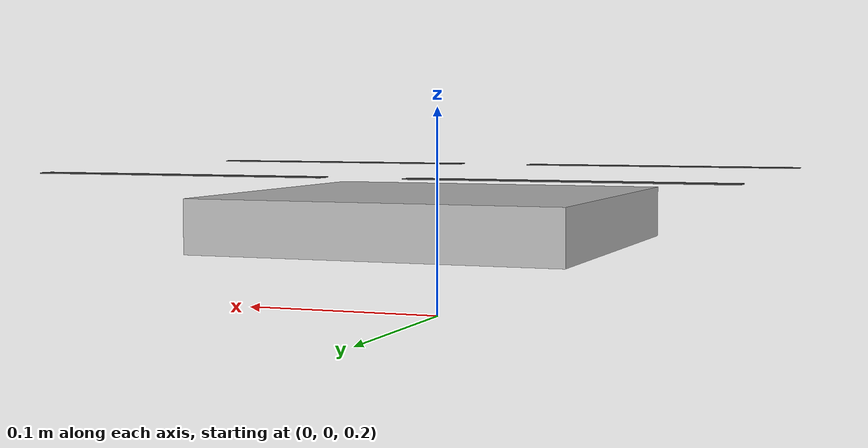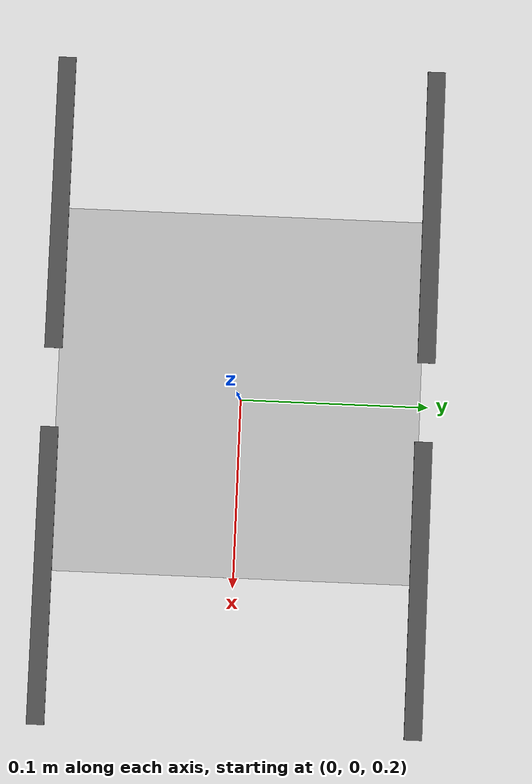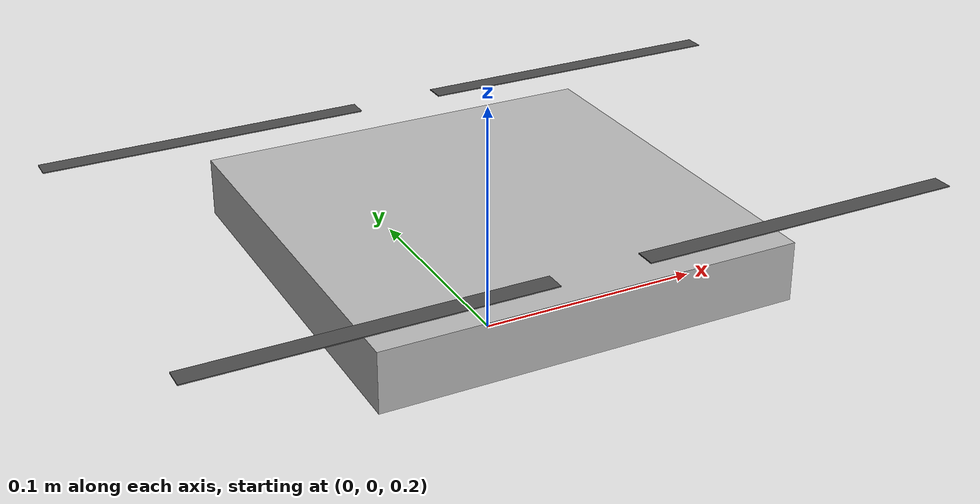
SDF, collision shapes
<?xml version="1.0" encoding="UTF-8"?>
<sdf version='1.9'>
  <model name='x250_test'>
    <pose>0 0 .24 0 0 0</pose>
    <self_collide>false</self_collide>
    <static>false</static>
    <link name="base_link">
      <inertial>
        <mass>0.72</mass>
        <inertia>
          <ixx>0.056</ixx>
          <ixy>0</ixy>
          <ixz>0</ixz>
          <iyy>0.056</iyy>
          <iyz>0</iyz>
          <izz>0.0104</izz>
        </inertia>
      </inertial>
      <gravity>true</gravity>
      <velocity_decay/>
      <visual name="base_link_visual">
        <pose>0 0 .0125 0 0 3.141592654</pose>
        <geometry>
          <mesh>
            <scale>0.5 0.5 0.5</scale>
            <uri>model://x500_base/meshes/NXP-HGD-CF.dae</uri>
          </mesh>
        </geometry>
      </visual>

      <collision name="base_link_collision_0">
        <pose>0 0 .007 0 0 0</pose>
        <geometry>
          <box>
            <size>0.175 0.175 0.025</size>
          </box>
        </geometry>
        <surface>
          <contact>
            <ode>
              <min_depth>0.001</min_depth>
              <max_vel>0</max_vel>
            </ode>
          </contact>
          <friction>
            <ode/>
          </friction>
        </surface>
      </collision>

      <sensor name="air_pressure_sensor" type="air_pressure">
        <always_on>1</always_on>
        <update_rate>50</update_rate>
        <air_pressure>
          <pressure>
            <noise type="gaussian">
              <mean>0</mean>
              <stddev>0.01</stddev>
            </noise>
          </pressure>
        </air_pressure>
      </sensor>
      <sensor name="imu_sensor" type="imu">
        <always_on>1</always_on>
        <update_rate>250</update_rate>
        <imu>
          <angular_velocity>
            <x>
              <noise type="gaussian">
                <mean>0</mean>
                <stddev>0.00018665</stddev>
                <dynamic_bias_stddev>3.8785e-05</dynamic_bias_stddev>
                <dynamic_bias_correlation_time>1000</dynamic_bias_correlation_time>
              </noise>
            </x>
            <y>
              <noise type="gaussian">
                <mean>0</mean>
                <stddev>0.00018665</stddev>
                <dynamic_bias_stddev>3.8785e-05</dynamic_bias_stddev>
                <dynamic_bias_correlation_time>1000</dynamic_bias_correlation_time>
              </noise>
            </y>
            <z>
              <noise type="gaussian">
                <mean>0</mean>
                <stddev>0.00018665</stddev>
                <dynamic_bias_stddev>3.8785e-05</dynamic_bias_stddev>
                <dynamic_bias_correlation_time>1000</dynamic_bias_correlation_time>
              </noise>
            </z>
          </angular_velocity>
          <linear_acceleration>
            <x>
              <noise type="gaussian">
                <mean>0</mean>
                <stddev>0.00186</stddev>
                <dynamic_bias_stddev>0.006</dynamic_bias_stddev>
                <dynamic_bias_correlation_time>300</dynamic_bias_correlation_time>
              </noise>
            </x>
            <y>
              <noise type="gaussian">
                <mean>0</mean>
                <stddev>0.00186</stddev>
                <dynamic_bias_stddev>0.006</dynamic_bias_stddev>
                <dynamic_bias_correlation_time>300</dynamic_bias_correlation_time>
              </noise>
            </y>
            <z>
              <noise type="gaussian">
                <mean>0</mean>
                <stddev>0.00186</stddev>
                <dynamic_bias_stddev>0.006</dynamic_bias_stddev>
                <dynamic_bias_correlation_time>300</dynamic_bias_correlation_time>
              </noise>
            </z>
          </linear_acceleration>
        </imu>
      </sensor>
      <sensor name="navsat_sensor" type="navsat">
        <always_on>1</always_on>
        <update_rate>30</update_rate>
      </sensor>
    </link>

    <link name="rotor_0">
      <gravity>true</gravity>
      <self_collide>false</self_collide>
      <velocity_decay/>
      <pose>0.0884 -0.0884 0.03 0 0 0</pose>
      <inertial>
          <mass>0.016076923076923075</mass>
          <inertia>
            <ixx>3.8464910483993325e-07</ixx>
            <iyy>2.6115851691700804e-05</iyy>
            <izz>2.649858234714004e-05</izz>
          </inertia>
        </inertial>
      <visual name="rotor_0_visual">
        <pose>-0.011 -0.073 -0.008 0 0 0</pose>
        <geometry>
          <mesh>
            <scale>0.42 0.42 0.42</scale>
            <uri>model://x500_base/meshes/1345_prop_ccw.stl</uri>
          </mesh>
        </geometry>
        <material>
          <script>
            <name>Gazebo/DarkGrey</name>
            <uri>file://media/materials/scripts/gazebo.material</uri>
          </script>
        </material>
      </visual>
      <visual name="rotor_0_visual_motor_bell">
        <pose>0 0 -.016 0 0 0</pose>
        <geometry>
          <mesh>
            <scale>0.5 0.5 0.5</scale>
            <uri>model://x500_base/meshes/5010Bell.dae</uri>
          </mesh>
        </geometry>
      </visual>
      <collision name="rotor_0_collision">
        <pose>0 0 0 0 0 0 </pose>
        <geometry>
          <box>
            <size>0.1395 0.00845 0.00042</size>
          </box>
        </geometry>
        <surface>
          <contact>
            <ode>
              <min_depth>0.001</min_depth>
              <max_vel>0</max_vel>
            </ode>
          </contact>
          <friction>
            <ode/>
          </friction>
        </surface>
      </collision>
    </link>
    <joint name="rotor_0_joint" type="revolute">
      <parent>base_link</parent>
      <child>rotor_0</child>
      <axis>
        <xyz>0 0 1</xyz>
        <limit>
          <lower>-1e+16</lower>
          <upper>1e+16</upper>
        </limit>
        <dynamics>
          <spring_reference>0</spring_reference>
          <spring_stiffness>0</spring_stiffness>
        </dynamics>
      </axis>
    </joint>
    <link name="rotor_1">
      <gravity>true</gravity>
      <self_collide>false</self_collide>
      <velocity_decay/>
      <pose>-0.0884 0.0884 0.03 0 0 0</pose>
      <inertial>
          <mass>0.016076923076923075</mass>
          <inertia>
            <ixx>3.8464910483993325e-07</ixx>
            <iyy>2.6115851691700804e-05</iyy>
            <izz>2.649858234714004e-05</izz>
          </inertia>
        </inertial>
      <visual name="rotor_1_visual">
        <pose>-0.011 -0.073 -0.008 0 0 0</pose>
        <geometry>
          <mesh>
            <scale>0.42 0.42 0.42</scale>
            <uri>model://x500_base/meshes/1345_prop_ccw.stl</uri>
          </mesh>
        </geometry>
        <material>
          <script>
            <name>Gazebo/DarkGrey</name>
            <uri>file://media/materials/scripts/gazebo.material</uri>
          </script>
        </material>
      </visual>
      <visual name="rotor_1_visual_motor_top">
        <pose>0 0 -.016 0 0 0</pose>
        <geometry>
          <mesh>
            <scale>0.5 0.5 0.5</scale>
            <uri>model://x500_base/meshes/5010Bell.dae</uri>
          </mesh>
        </geometry>
      </visual>
      <collision name="rotor_1_collision">
        <pose>0 0 0 0 0 0 </pose>
        <geometry>
          <box>
            <size>0.1395 0.00845 0.00042</size>
          </box>
        </geometry>
        <surface>
          <contact>
            <ode>
              <min_depth>0.001</min_depth>
              <max_vel>0</max_vel>
            </ode>
          </contact>
          <friction>
            <ode/>
          </friction>
        </surface>
      </collision>
    </link>
    <joint name="rotor_1_joint" type="revolute">
      <parent>base_link</parent>
      <child>rotor_1</child>
      <axis>
        <xyz>0 0 1</xyz>
        <limit>
          <lower>-1e+16</lower>
          <upper>1e+16</upper>
        </limit>
        <dynamics>
          <spring_reference>0</spring_reference>
          <spring_stiffness>0</spring_stiffness>
        </dynamics>
      </axis>
    </joint>
    <link name="rotor_2">
      <gravity>true</gravity>
      <self_collide>false</self_collide>
      <velocity_decay/>
      <pose>0.0884 0.0884 0.03 0 0 0</pose>
      <inertial>
          <mass>0.016076923076923075</mass>
          <inertia>
            <ixx>3.8464910483993325e-07</ixx>
            <iyy>2.6115851691700804e-05</iyy>
            <izz>2.649858234714004e-05</izz>
          </inertia>
        </inertial>
      <visual name="rotor_2_visual">
        <pose>-0.011 -0.073 -0.008 0 0 0</pose>
        <geometry>
          <mesh>
            <scale>0.42 0.42 0.42</scale>
            <uri>model://x500_base/meshes/1345_prop_cw.stl</uri>
          </mesh>
        </geometry>
        <material>
          <script>
            <name>Gazebo/DarkGrey</name>
            <uri>file://media/materials/scripts/gazebo.material</uri>
          </script>
        </material>
      </visual>
      <visual name="rotor_2_visual_motor_top">
        <pose>0 0 -.016 0 0 0</pose>
        <geometry>
          <mesh>
            <scale>0.5 0.5 0.5</scale>
            <uri>model://x500_base/meshes/5010Bell.dae</uri>
          </mesh>
        </geometry>
      </visual>
      <collision name="rotor_2_collision">
        <pose>0 0 0 0 0 0 </pose>
        <geometry>
          <box>
            <size>0.1395 0.00845 0.00042</size>
          </box>
        </geometry>
        <surface>
          <contact>
            <ode>
              <min_depth>0.001</min_depth>
              <max_vel>0</max_vel>
            </ode>
          </contact>
          <friction>
            <ode/>
          </friction>
        </surface>
      </collision>
    </link>
    <joint name="rotor_2_joint" type="revolute">
      <parent>base_link</parent>
      <child>rotor_2</child>
      <axis>
        <xyz>0 0 1</xyz>
        <limit>
          <lower>-1e+16</lower>
          <upper>1e+16</upper>
        </limit>
        <dynamics>
          <spring_reference>0</spring_reference>
          <spring_stiffness>0</spring_stiffness>
        </dynamics>
      </axis>
    </joint>
    <link name="rotor_3">
      <gravity>true</gravity>
      <self_collide>false</self_collide>
      <velocity_decay/>
      <pose>-0.0884 -0.0884 0.03 0 0 0</pose>
      <inertial>
          <mass>0.016076923076923075</mass>
          <inertia>
            <ixx>3.8464910483993325e-07</ixx>
            <iyy>2.6115851691700804e-05</iyy>
            <izz>2.649858234714004e-05</izz>
          </inertia>
        </inertial>
      <visual name="rotor_3_visual">
        <pose>-0.011 -0.073 -0.008 0 0 0</pose>
        <geometry>
          <mesh>
            <scale>0.42 0.42 0.42</scale>
            <uri>model://x500_base/meshes/1345_prop_cw.stl</uri>
          </mesh>
        </geometry>
        <material>
          <script>
            <name>Gazebo/DarkGrey</name>
            <uri>file://media/materials/scripts/gazebo.material</uri>
          </script>
        </material>
      </visual>
      <visual name="rotor_3_visual_motor_top">
        <pose>0 0 -.016 0 0 0</pose>
        <geometry>
          <mesh>
            <scale>0.5 0.5 0.5</scale>
            <uri>model://x500_base/meshes/5010Bell.dae</uri>
          </mesh>
        </geometry>
      </visual>
      <collision name="rotor_3_collision">
        <pose>0 0 0 0 0 0 </pose>
        <geometry>
          <box>
            <size>0.1395 0.00845 0.00042</size>
          </box>
        </geometry>
        <surface>
          <contact>
            <ode>
              <min_depth>0.001</min_depth>
              <max_vel>0</max_vel>
            </ode>
          </contact>
          <friction>
            <ode/>
          </friction>
        </surface>
      </collision>
    </link>
    <joint name="rotor_3_joint" type="revolute">
      <parent>base_link</parent>
      <child>rotor_3</child>
      <axis>
        <xyz>0 0 1</xyz>
        <limit>
          <lower>-1e+16</lower>
          <upper>1e+16</upper>
        </limit>
        <dynamics>
          <spring_reference>0</spring_reference>
          <spring_stiffness>0</spring_stiffness>
        </dynamics>
      </axis>
    </joint>

    <plugin filename="gz-sim-multicopter-motor-model-system" name="gz::sim::systems::MulticopterMotorModel">
      <jointName>rotor_0_joint</jointName>
      <linkName>rotor_0</linkName>
      <turningDirection>ccw</turningDirection>
      <timeConstantUp>0.0125</timeConstantUp>
      <timeConstantDown>0.025</timeConstantDown>
      <maxRotVelocity>2791.0</maxRotVelocity>
      <motorConstant>1.39e-06</motorConstant>
      <momentConstant>0.02</momentConstant>
      <commandSubTopic>command/motor_speed</commandSubTopic>
      <motorNumber>0</motorNumber>
      <rotorDragCoefficient>8.06428e-05</rotorDragCoefficient>
      <rollingMomentCoefficient>1e-06</rollingMomentCoefficient>
      <rotorVelocitySlowdownSim>10</rotorVelocitySlowdownSim>
      <motorType>velocity</motorType>
    </plugin>
    <plugin filename="gz-sim-multicopter-motor-model-system" name="gz::sim::systems::MulticopterMotorModel">
      <jointName>rotor_1_joint</jointName>
      <linkName>rotor_1</linkName>
      <turningDirection>ccw</turningDirection>
      <timeConstantUp>0.0125</timeConstantUp>
      <timeConstantDown>0.025</timeConstantDown>
      <maxRotVelocity>2791.0</maxRotVelocity>
      <motorConstant>1.39e-06</motorConstant>
      <momentConstant>0.02</momentConstant>
      <commandSubTopic>command/motor_speed</commandSubTopic>
      <motorNumber>1</motorNumber>
      <rotorDragCoefficient>8.06428e-05</rotorDragCoefficient>
      <rollingMomentCoefficient>1e-06</rollingMomentCoefficient>
      <rotorVelocitySlowdownSim>10</rotorVelocitySlowdownSim>
      <motorType>velocity</motorType>
    </plugin>
    <plugin filename="gz-sim-multicopter-motor-model-system" name="gz::sim::systems::MulticopterMotorModel">
      <jointName>rotor_2_joint</jointName>
      <linkName>rotor_2</linkName>
      <turningDirection>cw</turningDirection>
      <timeConstantUp>0.0125</timeConstantUp>
      <timeConstantDown>0.025</timeConstantDown>
      <maxRotVelocity>2791.0</maxRotVelocity>
      <motorConstant>1.39e-06</motorConstant>
      <momentConstant>0.02</momentConstant>
      <commandSubTopic>command/motor_speed</commandSubTopic>
      <motorNumber>2</motorNumber>
      <rotorDragCoefficient>8.06428e-05</rotorDragCoefficient>
      <rollingMomentCoefficient>1e-06</rollingMomentCoefficient>
      <rotorVelocitySlowdownSim>10</rotorVelocitySlowdownSim>
      <motorType>velocity</motorType>
    </plugin>
    <plugin filename="gz-sim-multicopter-motor-model-system" name="gz::sim::systems::MulticopterMotorModel">
      <jointName>rotor_3_joint</jointName>
      <linkName>rotor_3</linkName>
      <turningDirection>cw</turningDirection>
      <timeConstantUp>0.0125</timeConstantUp>
      <timeConstantDown>0.025</timeConstantDown>
      <maxRotVelocity>2791.0</maxRotVelocity>
      <motorConstant>1.39e-06</motorConstant>
      <momentConstant>0.02</momentConstant>
      <commandSubTopic>command/motor_speed</commandSubTopic>
      <motorNumber>3</motorNumber>
      <rotorDragCoefficient>8.06428e-05</rotorDragCoefficient>
      <rollingMomentCoefficient>1e-06</rollingMomentCoefficient>
      <rotorVelocitySlowdownSim>10</rotorVelocitySlowdownSim>
      <motorType>velocity</motorType>
    </plugin>

  </model>
</sdf>
